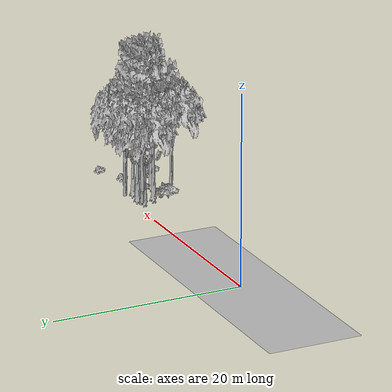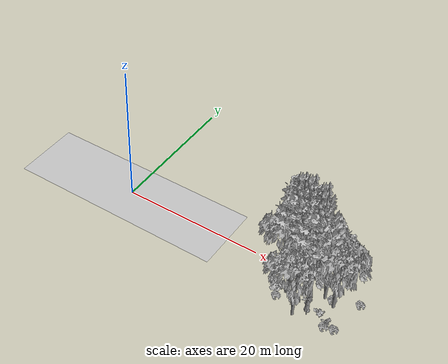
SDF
<sdf version="1.7">
 <world name="default">
  <model name="ground_plane">
   <static>1</static>
   <link name="link">
    <collision name="collision">
     <geometry><plane><normal>0 0 1</normal><size>100 100</size></plane></geometry>
     <surface><contact><ode><min_depth>0.01</min_depth><max_vel>0</max_vel></ode></contact></surface>
    </collision>
    <visual name="grass">
     <cast_shadows>0</cast_shadows>
     <geometry>
      <mesh>
       <scale>0.5814285714285714 0.18142857142857144 0.1</scale>
       <uri>file://grass_plane/meshes/grass_plane.dae</uri>
      </mesh>
     </geometry>
    </visual>
   </link>
  </model>
  <model name="Tree 60">
   <static>1</static>
   <pose>26.409296699334433 -2.9071326586289175 0 1.57079 -0 0</pose>
   <link name="link">
    <collision name="collision">
     <geometry><mesh><scale>3.5 5 3.5</scale><uri>model://tree_9/meshes/tree_9.obj</uri></mesh></geometry>
    </collision>
    <visual name="visual">
     <geometry><mesh><scale>3.5 5 3.5</scale><uri>model://tree_9/meshes/tree_9.obj</uri></mesh></geometry>
    </visual>
   </link>
  </model>
  <model name="Tree 118">
   <static>1</static>
   <pose>25.80390158564876 -1.567134698376476 0 1.57079 -0 0</pose>
   <link name="link">
    <collision name="collision">
     <geometry><mesh><scale>3.5 5 3.5</scale><uri>model://tree_9/meshes/tree_9.obj</uri></mesh></geometry>
    </collision>
    <visual name="visual">
     <geometry><mesh><scale>3.5 5 3.5</scale><uri>model://tree_9/meshes/tree_9.obj</uri></mesh></geometry>
    </visual>
   </link>
  </model>
  <model name="Tree 127">
   <static>1</static>
   <pose>32.23588703291301 -2.311431621063848 0 1.57079 -0 0</pose>
   <link name="link">
    <collision name="collision">
     <geometry><mesh><scale>3.5 5 3.5</scale><uri>model://tree_2/meshes/tree_2.obj</uri></mesh></geometry>
    </collision>
    <visual name="visual">
     <geometry><mesh><scale>3.5 5 3.5</scale><uri>model://tree_2/meshes/tree_2.obj</uri></mesh></geometry>
    </visual>
   </link>
  </model>
  <model name="Tree 141">
   <static>1</static>
   <pose>28.746306770829563 -1.5970129885608042 0 1.57079 -0 0</pose>
   <link name="link">
    <collision name="collision">
     <geometry><mesh><scale>3.5 5 3.5</scale><uri>model://tree_9/meshes/tree_9.obj</uri></mesh></geometry>
    </collision>
    <visual name="visual">
     <geometry><mesh><scale>3.5 5 3.5</scale><uri>model://tree_9/meshes/tree_9.obj</uri></mesh></geometry>
    </visual>
   </link>
  </model>
  <model name="Tree 176">
   <static>1</static>
   <pose>26.885373549079063 -1.2698214974233597 0 1.57079 -0 0</pose>
   <link name="link">
    <collision name="collision">
     <geometry><mesh><scale>3.5 5 3.5</scale><uri>model://tree_9/meshes/tree_9.obj</uri></mesh></geometry>
    </collision>
    <visual name="visual">
     <geometry><mesh><scale>3.5 5 3.5</scale><uri>model://tree_9/meshes/tree_9.obj</uri></mesh></geometry>
    </visual>
   </link>
  </model>
  <model name="Tree 208">
   <static>1</static>
   <pose>25.05712079639433 -1.0277213543106747 0 1.57079 -0 0</pose>
   <link name="link">
    <collision name="collision">
     <geometry><mesh><scale>3.5 5 3.5</scale><uri>model://tree_2/meshes/tree_2.obj</uri></mesh></geometry>
    </collision>
    <visual name="visual">
     <geometry><mesh><scale>3.5 5 3.5</scale><uri>model://tree_2/meshes/tree_2.obj</uri></mesh></geometry>
    </visual>
   </link>
  </model>
  <model name="Tree 258">
   <static>1</static>
   <pose>30.73712811626214 -1.5765526332141597 0 1.57079 -0 0</pose>
   <link name="link">
    <collision name="collision">
     <geometry><mesh><scale>3.5 5 3.5</scale><uri>model://tree_2/meshes/tree_2.obj</uri></mesh></geometry>
    </collision>
    <visual name="visual">
     <geometry><mesh><scale>3.5 5 3.5</scale><uri>model://tree_2/meshes/tree_2.obj</uri></mesh></geometry>
    </visual>
   </link>
  </model>
  <model name="Tree 264">
   <static>1</static>
   <pose>27.776332569741527 -0.27134149441284805 0 1.57079 -0 0</pose>
   <link name="link">
    <collision name="collision">
     <geometry><mesh><scale>3.5 5 3.5</scale><uri>model://tree_2/meshes/tree_2.obj</uri></mesh></geometry>
    </collision>
    <visual name="visual">
     <geometry><mesh><scale>3.5 5 3.5</scale><uri>model://tree_2/meshes/tree_2.obj</uri></mesh></geometry>
    </visual>
   </link>
  </model>
  <model name="Tree 273">
   <static>1</static>
   <pose>28.657719822444818 -6.089595733997804 0 1.57079 -0 0</pose>
   <link name="link">
    <collision name="collision">
     <geometry><mesh><scale>3.5 5 3.5</scale><uri>model://tree_2/meshes/tree_2.obj</uri></mesh></geometry>
    </collision>
    <visual name="visual">
     <geometry><mesh><scale>3.5 5 3.5</scale><uri>model://tree_2/meshes/tree_2.obj</uri></mesh></geometry>
    </visual>
   </link>
  </model>
  <model name="Tree 311">
   <static>1</static>
   <pose>29.260520544228697 -2.5771270821643704 0 1.57079 -0 0</pose>
   <link name="link">
    <collision name="collision">
     <geometry><mesh><scale>3.5 5 3.5</scale><uri>model://tree_9/meshes/tree_9.obj</uri></mesh></geometry>
    </collision>
    <visual name="visual">
     <geometry><mesh><scale>3.5 5 3.5</scale><uri>model://tree_9/meshes/tree_9.obj</uri></mesh></geometry>
    </visual>
   </link>
  </model>
  <model name="Tree 440">
   <static>1</static>
   <pose>29.778931160041594 -4.189180354023307 0 1.57079 -0 0</pose>
   <link name="link">
    <collision name="collision">
     <geometry><mesh><scale>3.5 5 3.5</scale><uri>model://tree_9/meshes/tree_9.obj</uri></mesh></geometry>
    </collision>
    <visual name="visual">
     <geometry><mesh><scale>3.5 5 3.5</scale><uri>model://tree_9/meshes/tree_9.obj</uri></mesh></geometry>
    </visual>
   </link>
  </model>
  <model name="Bush 25">
   <static>1</static>
   <pose>25.18042297489484 -4.088654907573748 0 1.57079 -0 0</pose>
   <link name="link">
    <collision name="collision">
     <geometry><mesh><scale>2 2 2</scale><uri>model://bush_1/meshes/bush_1.obj</uri></mesh></geometry>
     <surface><contact><collide_without_contact>false</collide_without_contact></contact></surface>
    </collision>
    <visual name="visual">
     <geometry><mesh><scale>2 2 2</scale><uri>model://bush_1/meshes/bush_1.obj</uri></mesh></geometry>
    </visual>
   </link>
  </model>
  <model name="Bush 27">
   <static>1</static>
   <pose>29.258955191635238 -3.353666269820213 0 1.57079 -0 0</pose>
   <link name="link">
    <collision name="collision">
     <geometry><mesh><scale>2 2 2</scale><uri>model://bush_2/meshes/bush_2.obj</uri></mesh></geometry>
     <surface><contact><collide_without_contact>false</collide_without_contact></contact></surface>
    </collision>
    <visual name="visual">
     <geometry><mesh><scale>2 2 2</scale><uri>model://bush_2/meshes/bush_2.obj</uri></mesh></geometry>
    </visual>
   </link>
  </model>
  <model name="Bush 61">
   <static>1</static>
   <pose>35.10946598367491 -0.454496037715602 0 1.57079 -0 0</pose>
   <link name="link">
    <collision name="collision">
     <geometry><mesh><scale>2 2 2</scale><uri>model://bush_3/meshes/bush_3.obj</uri></mesh></geometry>
     <surface><contact><collide_without_contact>false</collide_without_contact></contact></surface>
    </collision>
    <visual name="visual">
     <geometry><mesh><scale>2 2 2</scale><uri>model://bush_3/meshes/bush_3.obj</uri></mesh></geometry>
    </visual>
   </link>
  </model>
  <model name="Bush 127">
   <static>1</static>
   <pose>34.125603613176494 -5.591935198493086 0 1.57079 -0 0</pose>
   <link name="link">
    <collision name="collision">
     <geometry><mesh><scale>2 2 2</scale><uri>model://bush_3/meshes/bush_3.obj</uri></mesh></geometry>
     <surface><contact><collide_without_contact>false</collide_without_contact></contact></surface>
    </collision>
    <visual name="visual">
     <geometry><mesh><scale>2 2 2</scale><uri>model://bush_3/meshes/bush_3.obj</uri></mesh></geometry>
    </visual>
   </link>
  </model>
  <model name="Bush 131">
   <static>1</static>
   <pose>32.97686558123365 -5.512602283354735 0 1.57079 -0 0</pose>
   <link name="link">
    <collision name="collision">
     <geometry><mesh><scale>2 2 2</scale><uri>model://bush_4/meshes/bush_4.obj</uri></mesh></geometry>
     <surface><contact><collide_without_contact>false</collide_without_contact></contact></surface>
    </collision>
    <visual name="visual">
     <geometry><mesh><scale>2 2 2</scale><uri>model://bush_4/meshes/bush_4.obj</uri></mesh></geometry>
    </visual>
   </link>
  </model>
  <model name="Bush 208">
   <static>1</static>
   <pose>25.860783222858245 -4.889551699338298 0 1.57079 -0 0</pose>
   <link name="link">
    <collision name="collision">
     <geometry><mesh><scale>2 2 2</scale><uri>model://bush_3/meshes/bush_3.obj</uri></mesh></geometry>
     <surface><contact><collide_without_contact>false</collide_without_contact></contact></surface>
    </collision>
    <visual name="visual">
     <geometry><mesh><scale>2 2 2</scale><uri>model://bush_3/meshes/bush_3.obj</uri></mesh></geometry>
    </visual>
   </link>
  </model>
  <model name="Bush 224">
   <static>1</static>
   <pose>32.92263700966858 -5.90490642047105 0 1.57079 -0 0</pose>
   <link name="link">
    <collision name="collision">
     <geometry><mesh><scale>2 2 2</scale><uri>model://bush_3/meshes/bush_3.obj</uri></mesh></geometry>
     <surface><contact><collide_without_contact>false</collide_without_contact></contact></surface>
    </collision>
    <visual name="visual">
     <geometry><mesh><scale>2 2 2</scale><uri>model://bush_3/meshes/bush_3.obj</uri></mesh></geometry>
    </visual>
   </link>
  </model>
  <model name="Bush 269">
   <static>1</static>
   <pose>31.92346703195514 -1.6909267899202014 0 1.57079 -0 0</pose>
   <link name="link">
    <collision name="collision">
     <geometry><mesh><scale>2 2 2</scale><uri>model://bush_3/meshes/bush_3.obj</uri></mesh></geometry>
     <surface><contact><collide_without_contact>false</collide_without_contact></contact></surface>
    </collision>
    <visual name="visual">
     <geometry><mesh><scale>2 2 2</scale><uri>model://bush_3/meshes/bush_3.obj</uri></mesh></geometry>
    </visual>
   </link>
  </model>
  <model name="Bush 299">
   <static>1</static>
   <pose>25.616870895523178 -3.418232607529877 0 1.57079 -0 0</pose>
   <link name="link">
    <collision name="collision">
     <geometry><mesh><scale>2 2 2</scale><uri>model://bush_4/meshes/bush_4.obj</uri></mesh></geometry>
     <surface><contact><collide_without_contact>false</collide_without_contact></contact></surface>
    </collision>
    <visual name="visual">
     <geometry><mesh><scale>2 2 2</scale><uri>model://bush_4/meshes/bush_4.obj</uri></mesh></geometry>
    </visual>
   </link>
  </model>
  <model name="Bush 320">
   <static>1</static>
   <pose>31.68496179506073 -4.647017324940045 0 1.57079 -0 0</pose>
   <link name="link">
    <collision name="collision">
     <geometry><mesh><scale>2 2 2</scale><uri>model://bush_0/meshes/bush_0.obj</uri></mesh></geometry>
     <surface><contact><collide_without_contact>false</collide_without_contact></contact></surface>
    </collision>
    <visual name="visual">
     <geometry><mesh><scale>2 2 2</scale><uri>model://bush_0/meshes/bush_0.obj</uri></mesh></geometry>
    </visual>
   </link>
  </model>
 </world>
</sdf>
